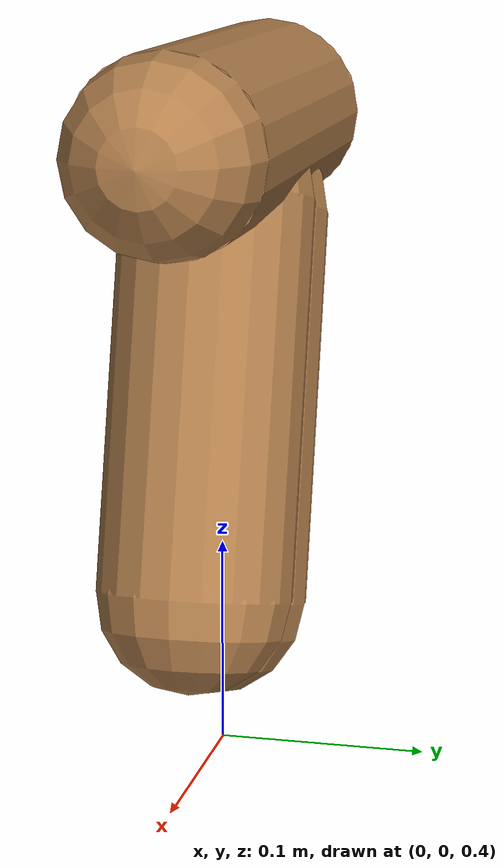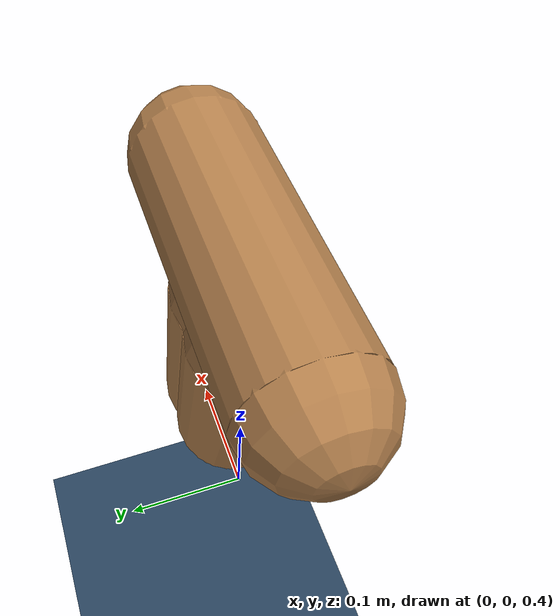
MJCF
<mujoco model="foot">
  <include file="./common/skybox.xml"/>
  <include file="./common/visual.xml"/>
  <include file="./common/materials.xml"/>

  <compiler settotalmass="2"/>

  <default>
    <default class="foot">
      <joint limited="true" damping=".01" armature=".1" stiffness="8" type="hinge" axis="0 1 0"/>
      <geom contype="1" conaffinity="1" condim="3" friction=".4 .1 .1" material="self"/>
    </default>
    <default class="free">
      <joint limited="false" damping="0" armature="0" stiffness="0"/>
    </default>
    <motor ctrllimited="true" ctrlrange="-1 1"/>
  </default>

  <statistic center="0 0 .7" extent="2"/>

  <option timestep="0.01"/>

  <worldbody>
    <geom name="ground" type="plane" conaffinity="1" pos="98 0 0" size="100 .8 .5" material="grid"/>
    <body name="torso" pos="0 0 .7" childclass="foot">
      <light name="light" pos="0 0 2" mode="trackcom"/>
      <camera name="side" pos="0 -3 0" quat="0.707 0.707 0 0" mode="trackcom"/>
      <camera name="back" pos="-1.8 -1.3 0.8" xyaxes="0.45 -0.9 0 0.3 0.15 0.94" mode="trackcom"/>
      <joint name="rootx" type="slide" axis="1 0 0" class="free"/>
      <joint name="rootz" type="slide" axis="0 0 1" class="free"/>
      <joint name="rooty" type="hinge" axis="0 1 0" class="free"/>
      <geom name="torso" type="capsule" fromto="-.1 0 0 .1 0 0" size="0.046" solref="-1 0"/>

      <body name="ffoot" pos=".1 0 0">
      <joint name="ffoot" range="-28 28" stiffness="0" damping="0"/>
      <geom name="ffoot" type="capsule" pos="-.07 0 -.12" euler="0 -15 0" size="0.046 .094"/>
      </body>

      <body name="bfoot" pos="-.1 0 0">
      <joint name="bfoot" range="-230 50" stiffness="0" damping="0"/>
      <geom name="bfoot" type="capsule" pos=".1 0 -.13" euler="0 -15 0" size="0.046 .094"/>

      </body>
    </body>
  </worldbody>

  <sensor>
    <subtreelinvel name="torso_subtreelinvel" body="torso"/>
  </sensor>

  <actuator>
    <motor name="ffoot" joint="ffoot" gear="30" />
    <motor name="bfoot" joint="bfoot" gear="60" />
  </actuator>
</mujoco>

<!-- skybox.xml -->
<mujoco>
    <asset>
        <texture name="skybox" type="skybox" builtin="gradient" rgb1=".4 .6 .8" rgb2="0 0 0"
                 width="800" height="800" mark="random" markrgb="1 1 1"/>
    </asset>
</mujoco>

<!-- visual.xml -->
<mujoco>
    <visual>
        <headlight ambient=".4 .4 .4" diffuse=".8 .8 .8" specular="0.1 0.1 0.1"/>
        <map znear=".01"/>
        <quality shadowsize="2048"/>
    </visual>
</mujoco>

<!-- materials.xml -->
<!--
Common textures, colors and materials to be used throughout this suite. Some
materials such as xxx_highlight are activated on occurence of certain events,
for example receiving a positive reward.
-->
<mujoco>
    <asset>
        <texture name="grid" type="2d" builtin="checker" rgb1=".1 .2 .3" rgb2=".2 .3 .4" width="300" height="300" mark="edge" markrgb=".2 .3 .4"/>
        <material name="grid" texture="grid" texrepeat="1 1" texuniform="true" reflectance=".2"/>
        <material name="self" rgba=".7 .5 .3 1"/>
        <material name="self_default" rgba=".7 .5 .3 1"/>
        <material name="self_highlight" rgba="0 .5 .3 1"/>
        <material name="effector" rgba=".7 .4 .2 1"/>
        <material name="effector_default" rgba=".7 .4 .2 1"/>
        <material name="effector_highlight" rgba="0 .5 .3 1"/>
        <material name="decoration" rgba=".3 .5 .7 1"/>
        <material name="eye" rgba="0 .2 1 1"/>
        <material name="target" rgba=".6 .3 .3 1"/>
        <material name="target_default" rgba=".6 .3 .3 1"/>
        <material name="target_highlight" rgba=".6 .3 .3 .4"/>
        <material name="site" rgba=".5 .5 .5 .3"/>
    </asset>
</mujoco>
